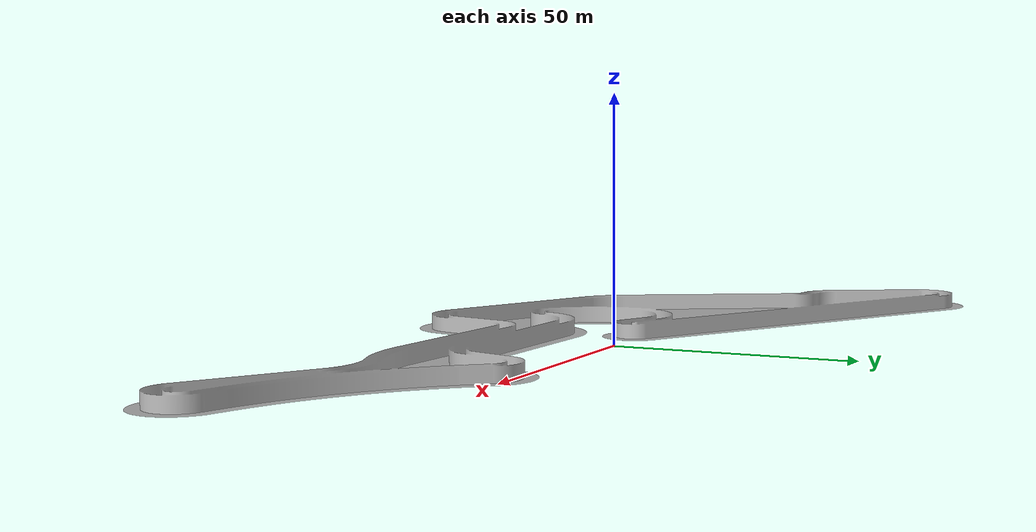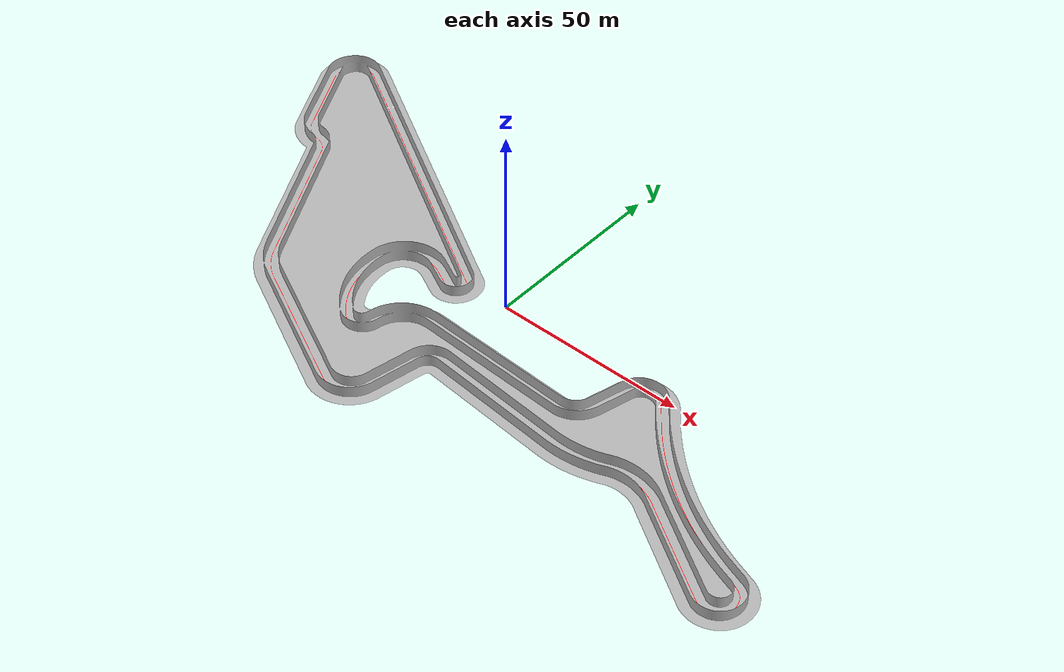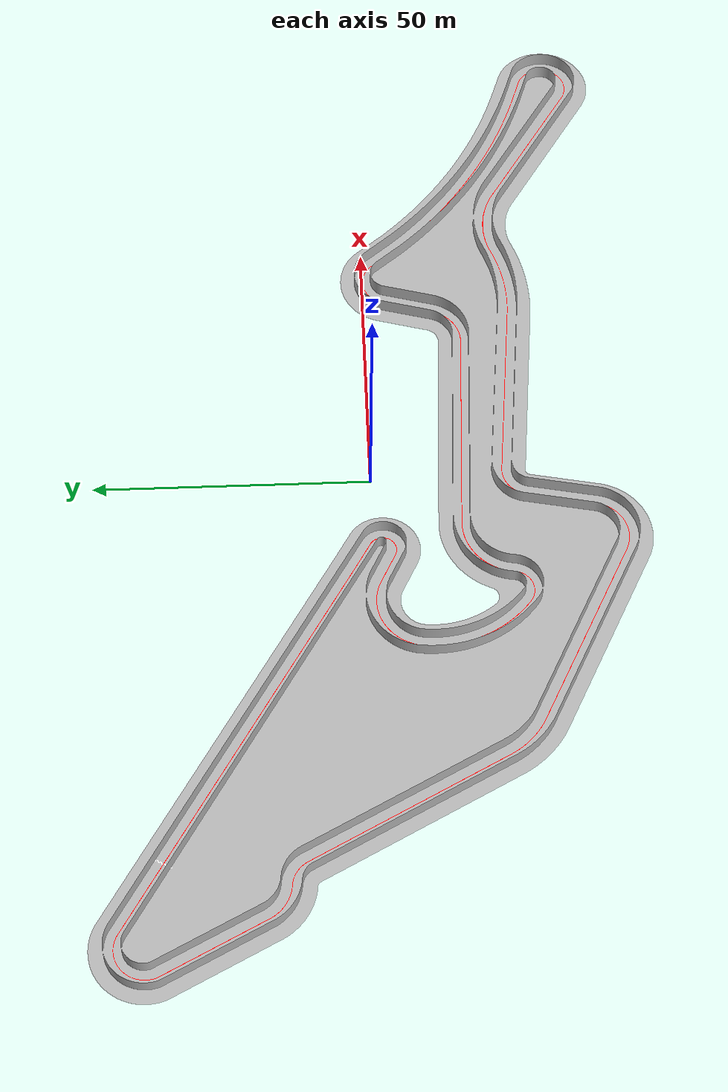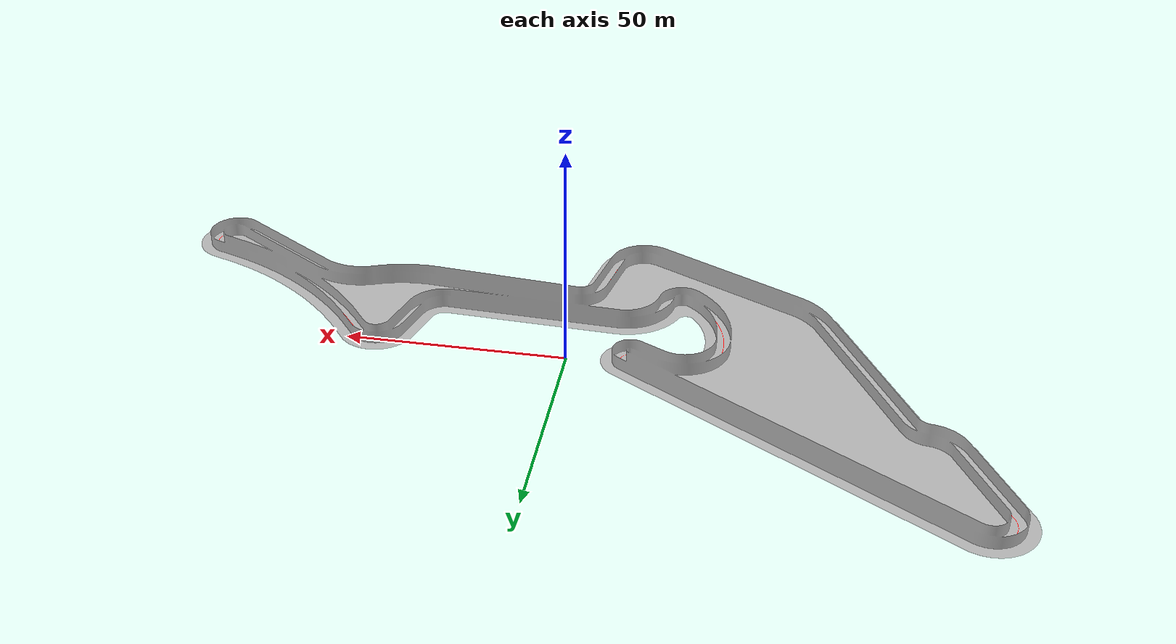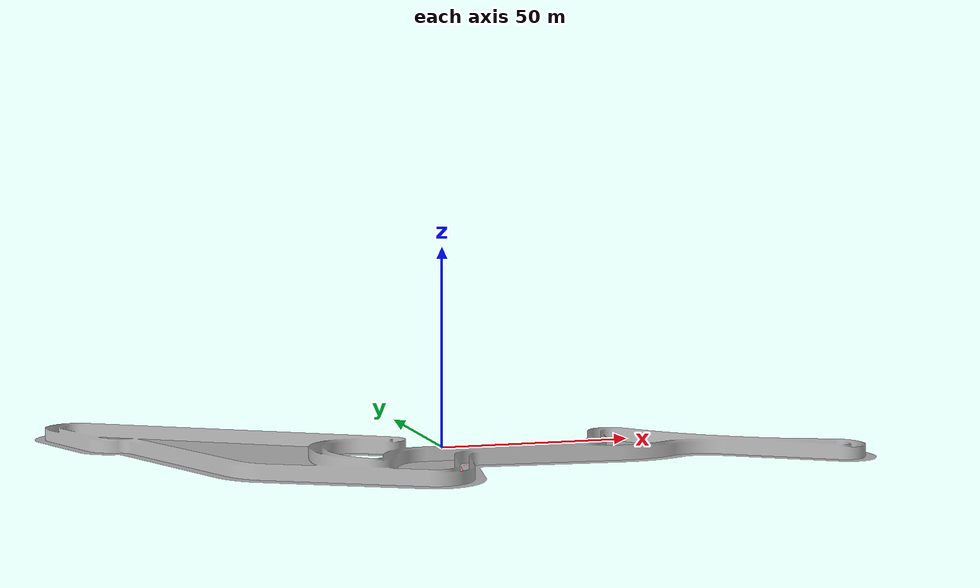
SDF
<?xml version='1.0'?>
<sdf version="1.4">
  <model name="nurburgring">
    <static>true</static>
    <link name="nurburgring">
      <pose>0 0 0 0 0 0</pose>
      <collision name="collision">
        <geometry>
          <plane>
            <size> 200 200</size>
          </plane>
        </geometry>
      </collision>
      <visual name="visual">
        <geometry>
          <mesh>
            <uri>model://nurburgring_line/meshes/Circuito_Nurburgrin.dae</uri>
          </mesh>
        </geometry>
      </visual>
    </link>
    <link name="pared">
      <collision name="collision">
        <geometry>
          <mesh>
            <uri>model://nurburgring_line/meshes/pared.stl</uri>
          </mesh>
        </geometry>
      </collision>
    </link>
  </model>
</sdf>
